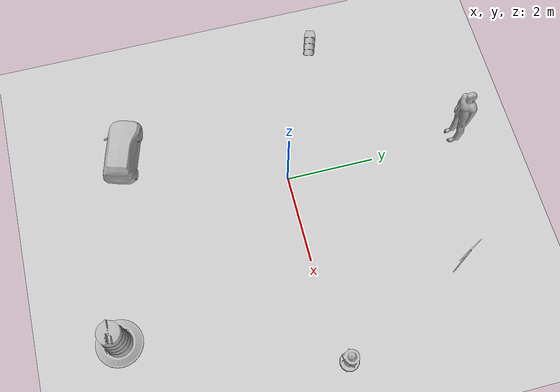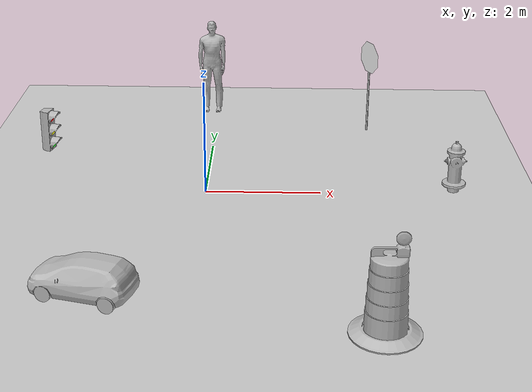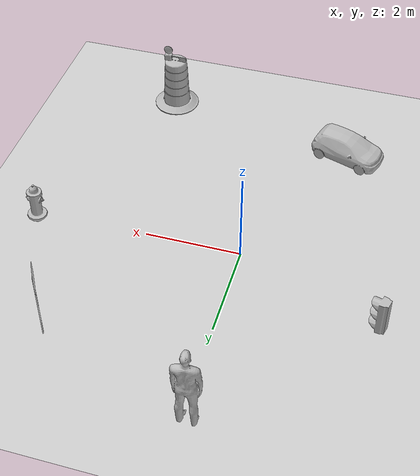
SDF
<?xml version="1.0" ?>
<sdf version="1.4">
  <!-- We use a custom world for the rrbot so that the camera angle is launched correctly -->

  <world name="default">

    <include>
      <uri>model://ground_plane</uri>
    </include>

    <!-- Global light source -->
    <include>
      <uri>model://sun</uri>
    </include>

   <!-- Focus camera on tall pendulum -->
    <gui fullscreen='0'>
      <camera name='user_camera'>
        <pose>4.927360 -4.376610 3.740080 0.000000 0.275643 2.356190</pose>
        <view_controller>orbit</view_controller>
      </camera>
    </gui>

<model name="fire_hydrant">
    <pose>4.32 0.191 0 0 0 0</pose>
    <static>true</static>
    <link name="link">
      <collision name="collision">
        <geometry>
        <mesh>
            <uri>model://fire_hydrant/meshes/fire_hydrant.dae</uri>
          </mesh>
        </geometry>
      </collision>

      <visual name="visual">
        <geometry>
          <mesh>
            <uri>model://fire_hydrant/meshes/fire_hydrant.dae</uri>
          </mesh>
        </geometry>
      </visual>
    </link>
  </model>

<model name="person_standing">
    <pose>-0.146140 4.069 0 0 0 -0.00013</pose>
    <static>true</static>
    <link name="link">
      <collision name="collision">
        <geometry>
        <mesh>
            <uri>model://person_standing/meshes/standing.dae</uri>
          </mesh>
        </geometry>
      </collision>

      <visual name="visual">
        <geometry>
          <mesh>
            <uri>model://person_standing/meshes/standing.dae</uri>
          </mesh>
        </geometry>
      </visual>
    </link>
  </model>

<model name="stop_sign">
    <pose>3 2.954 0 0 0 -1.08</pose>
    <static>true</static>
    <link name="link">
      <collision name="collision">
        <geometry>
        <mesh>
            <uri>model://stop_sign/meshes/stop_sign.dae</uri>
          </mesh>
        </geometry>
      </collision>

      <visual name="visual">
        <geometry>
          <mesh>
            <uri>model://stop_sign/meshes/stop_sign.dae</uri>
          </mesh>
        </geometry>
        <material>
          <script>
            <uri>model://stop_sign/materials/scripts</uri>
            <uri>model://stop_sign/materials/textures</uri>
            <name>StopSign/Diffuse</name>
          </script>
        </material>
      </visual>
    </link>
  </model>
<model name="hatchback_red">
    <pose>-1.370421 -3.556199 0 0 0 -1.863615</pose>
    <static>true</static>
    <link name="link">
      <collision name="collision">
        <geometry>
        <mesh>
            <uri>model://hatchback_red/meshes/hatchback.obj</uri>
            <scale>0.01 0.01 0.01</scale>
          </mesh>
        </geometry>
      </collision>

      <visual name="visual">
        <geometry>
          <mesh>
            <uri>model://hatchback_red/meshes/hatchback.obj</uri>
          <scale>0.01 0.01 0.01</scale>
          </mesh>
        </geometry>
      </visual>
    </link>
  </model>

<model name="CONSTRUCTION BARREL">
    <pose>2.75 -4.37 0 0 0 0</pose>
    <static>true</static>
    <link name="link">
      <collision name="collision">
        <geometry>
        <mesh>
            <uri>model://construction_barrel/meshes/construction_barrel.dae</uri>
          </mesh>
        </geometry>
      </collision>

      <visual name="visual">
        <geometry>
          <mesh>
            <uri>model://construction_barrel/meshes/construction_barrel.dae</uri>
          </mesh>
        </geometry>
      </visual>
    </link>
  </model>

<model name="stop_light">

    <static>true</static>

    <!-- this pose can be overriden when including the light on another model -->
    <pose>-3.052 1.296 1 0 0 1.321406</pose>

    <link name="link">

      <collision name="collision">
        <geometry>
          <mesh>
            <uri>model://stop_light/meshes/stop_light.obj</uri>
            <scale>0.01 0.01 0.01</scale>
          </mesh>
        </geometry>
      </collision>

      <visual name="frame">
        <geometry>
          <mesh>
            <uri>model://stop_light/meshes/stop_light.obj</uri>
            <scale>0.01 0.01 0.01</scale>
          </mesh>
        </geometry>
      </visual>

      <visual name="red">
        <pose>-0.001123 -0.082251 -0.147514 0 0 0</pose>
        <geometry>
          <sphere>
            <radius>0.1012</radius>
          </sphere>
        </geometry>
        <material>
          <script>
            <uri>model://stop_light/materials/scripts/</uri>
            <uri>model://stop_light/materials/textures/</uri>
            <name>StopLight/Light</name>
          </script>
          <ambient>1 0 0 1</ambient>
          <specular>1 0 0 1</specular>
          <!-- Turn a light on by uncommenting emissive -->
        </material>
      </visual>

      <visual name="yellow">
        <pose>-0.001123 -0.082251 -0.402 0 0 0</pose>
        <geometry>
          <sphere>
            <radius>0.1012</radius>
          </sphere>
        </geometry>
        <material>
          <script>
            <uri>model://stop_light/materials/scripts/</uri>
            <uri>model://stop_light/materials/textures/</uri>
            <name>StopLight/Light</name>
          </script>
          <ambient>1 1 0 1</ambient>
          <specular>1 1 0 1</specular>
        </material>
      </visual>

      <visual name="green">
        <pose>-0.001123 -0.082251 -0.655 0 0 0</pose>
        <geometry>
          <sphere>
            <radius>0.1012</radius>
          </sphere>
        </geometry>
        <material>
          <script>
            <uri>model://stop_light/materials/scripts/</uri>
            <uri>model://stop_light/materials/textures/</uri>
            <name>StopLight/Light</name>
          </script>
          <ambient>0 1 0 1</ambient>
          <specular>0 1 0 1</specular>
        </material>
      </visual>

    </link>
  </model>

  </world>
</sdf>
